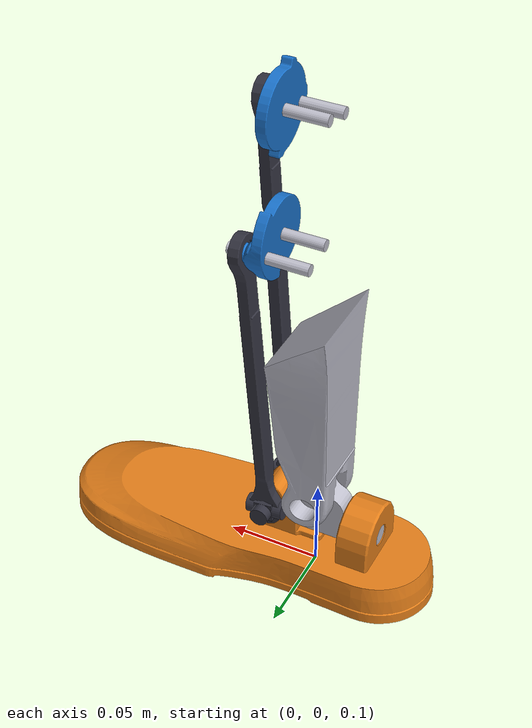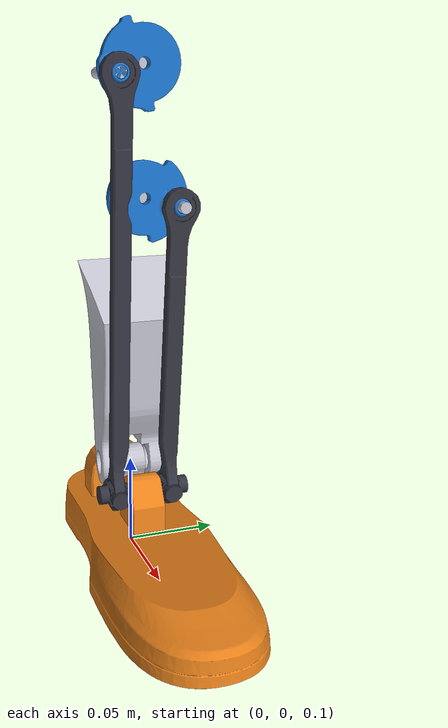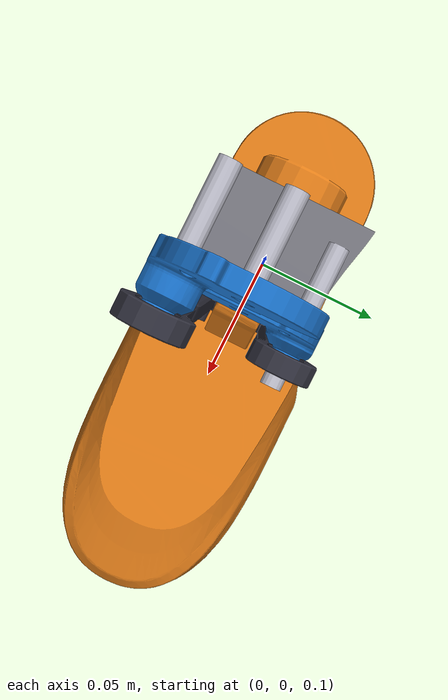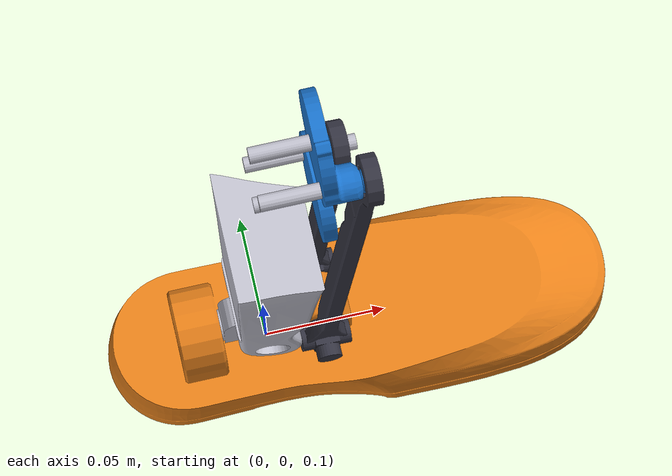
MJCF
<mujoco model="g1_ankle">
<!--  模型为个人装配，可能和官方不一致，动力学参数完全错误  。
      xml 构件参考cassie， 还可能存在bug -->

  <compiler angle="radian" meshdir="../meshes/"/>
  <option timestep='0.0005' iterations='50' solver='PGS' gravity='0 0 -9.81'/>

  <default>
    <joint limited='true'/>
    <motor ctrllimited='true'/>
    <geom contype='0' conaffinity='0' condim='1' solref='0.005 1'/>
    <equality solref='0.001 1'/>
    <default class='cassie'>
      <geom material='cassie'/>
    </default>
  </default>

  <asset>
    <texture type='skybox' builtin='gradient' width='128' height='128' rgb1='0.4 0.6 0.8' rgb2='0 0 0'/>
    <texture name='plane' type='2d' builtin='checker' rgb1='0.2 0.2 0.2' rgb2='0.3 0.3 0.3' width='512' height='512'/>
    <material name='plane' reflectance='0.0' texture='plane' texrepeat='1 1' texuniform='true'/>
    <material name='cassie'    rgba='0.9 0.5 0.1 1'/>
    <material name='collision' rgba='0.1 0.5 0.9 0'/>
    <material name='obstacle'  rgba='0.2 0.6 0.2 1'/>
    <mesh name="base_link" file="base_link.STL"/>
    <mesh name="pitch_link" file="pitch_link.STL"/>
    <mesh name="roll_link" file="roll_link.STL"/>
    <mesh name="right_u_link" file="right_u_link.STL"/>
    <mesh name="right_connect_link" file="right_connect_link.STL"/>
    <mesh name="left_u_link" file="left_u_link.STL"/>
    <mesh name="left_connect_link" file="left_connect_link.STL"/>
    <mesh name="right_motor_link" file="right_motor_link.STL"/>
    <mesh name="left_motor_link" file="left_motor_link.STL"/>

    <!-- === 通用物体颜色 === -->
    <material name="slate_grey" rgba="0.4 0.5 0.6 1.0"/>
    <material name="off_white" rgba="0.9 0.9 0.95 1.0"/>
    <material name="target_orange" rgba="0.9 0.5 0.1 1.0"/>

    <!-- === 机器人专用颜色 (分层设计) === -->
    <!-- 主体：深灰色，显得稳重 -->
    <material name="robot_base" rgba="0.2 0.2 0.25 1.0"/>
    <!-- 连杆：浅银色，模拟金属 -->
    <material name="robot_link" rgba="0.75 0.75 0.8 1.0"/>
    <!-- 关节：蓝色，突出活动部件 -->
    <material name="robot_joint" rgba="0.1 0.45 0.8 1.0"/>
    <!-- 末端执行器：红色，醒目 -->
    <material name="robot_ee" rgba="0.9 0.5 0.1 1.0"/>
  </asset>

  <worldbody>

    <light mode='trackcom' pos='0 0 5' dir='0 0 -1'/>
    <light directional='true' pos='0 0 3' dir='0 0 -1' diffuse='0.2 0.2 0.2' specular='0 0 0'/>

    <body name="base_link"  pos='0 0 0.15' childclass='cassie'>
      <inertial pos="0.0023576 1.9104e-06 0.060943" quat="0.999998 2.35279e-05 0.00217974 7.32529e-05" mass="0.11466" diaginertia="0.000109042 0.00010227 2.40534e-05"/>
      <geom type="mesh" contype="0" conaffinity="0" group="1" density="0"  mesh="base_link"  material="robot_link"/>
      <body name="pitch_link">
        <inertial pos="-0.0085578 0 -0.012176" quat="0.578533 0.406571 0.406571 0.578533" mass="0.010343" diaginertia="2.1505e-06 1.64667e-06 7.32168e-07"/>
        <joint name="pitch_joint" pos="0 0 0" axis="0 1 0"  range='-0.87267 0.5236' damping='0.' />
        <geom type="mesh" contype="0" conaffinity="0" group="1" density="0"  mesh="pitch_link"  material="robot_link"/>
        <body name="roll_link" pos="0 0 -0.017558">
          <inertial pos="0.035489 1.1701e-05 -0.021531" quat="2.50117e-05 0.721548 5.49874e-05 0.692365" mass="0.30033" diaginertia="0.000981419 0.00091712 0.000118621"/>
          <joint name="roll_joint" pos="0 0 0" axis="1 0 0"  range='-15 22.5' damping='0.'  />
          <geom type="mesh" contype="0" conaffinity="0" group="1" density="0"  mesh="roll_link"  material="robot_ee"/>
          <body name="right_u_link" pos="0.022 -0.015 0.0079999">
            <inertial pos="0 0 0" quat="0.519376 0.519376 -0.479842 0.479842" mass="0.0025708" diaginertia="1.18115e-07 7.72077e-08 7.7208e-08"/>
            <joint name="right_u_pitch_joint" pos="0 0 0" axis="0 1 0"  range='-15 22.5' damping='0.0'  />
            <geom type="mesh" contype="0" conaffinity="0" group="1" density="0"  mesh="right_u_link"  material="robot_base"/>
            <body name="right_connect_link" quat="0.999214 0.0030657 0.039534 -0.00011502">
              <inertial pos="-6.63991e-06 0.000970747 0.109981" quat="0.999999 -7.74094e-05 -7.9787e-05 -0.00117312" mass="0.0151882" diaginertia="7.07915e-05 7.07465e-05 2.17997e-07"/>
              <joint name="right_connect_joint" pos="0 0 0" axis="1 0 0" range='-15 22.5' damping='0.0'  />
              <geom type="mesh" contype="0" conaffinity="0" group="1" density="0"  mesh="right_connect_link"  material="robot_base"/>
            </body>
          </body>
          <body name="left_u_link" pos="0.022 0.015 0.0079999">
            <inertial pos="0 0 0" quat="0.520292 0.520292 -0.478849 0.478849" mass="0.0025708" diaginertia="1.18111e-07 7.72075e-08 7.7208e-08"/>
            <joint name="left_u_pitch_joint" pos="0 0 0" axis="0 1 0"  range='-15 22.5' damping='0.0' />
            <geom type="mesh" contype="0" conaffinity="0" group="1" density="0"  mesh="left_u_link"  material="robot_base"/>
            <body name="left_connect_link" quat="0.999141 0.000350633 0.0414391 -8.26912e-06">
              <inertial pos="-9.16684e-06 -6.80773e-05 0.0781984" quat="0.999991 -0.00371968 -0.000154316 0.0018207" mass="0.0111282" diaginertia="2.56262e-05 2.55936e-05 1.73691e-07"/>
              <joint name="left_connect_joint" pos="0 0 0" axis="-1 0 0" range='-15 22.5' damping='0.0'  />
              <geom type="mesh" contype="0" conaffinity="0" group="1" density="0"  mesh="left_connect_link"  material="robot_base"/>
            </body>
          </body>
        </body>
      </body>

      <body name="left_motor_link" pos="0.022 0 0.15087">
        <inertial pos="0.00362577 0.00424053 -0.00101697" quat="0.730146 0.603674 -0.203969 -0.246701" mass="0.0080401" diaginertia="1.70243e-06 1.05152e-06 7.70806e-07"/>
        <joint name="left_motor_joint" pos="0 0 0" axis="1 0 0"  range='-1.5 1.5' damping='0.0' armature='0.001'/>
        <geom type="mesh" contype="0" conaffinity="0" group="1" density="0" mesh="left_motor_link"  material="robot_joint"/>
      </body>

      <body name="right_motor_link" pos="0.022 0 0.21587">
        <inertial pos="0.00448907 -0.00493819 -0.00139596" quat="0.582114 0.700706 0.317293 0.263592" mass="0.0088576" diaginertia="1.89082e-06 1.22813e-06 8.9823e-07"/>
        <joint name="right_motor_joint" pos="0 0 0" axis="1 0 0"  range='-1.5 1.5' damping='0.0' armature='0.001'/>
        <geom type="mesh" contype="0" conaffinity="0" group="1" density="0"  mesh="right_motor_link"  material="robot_joint"/>
      </body>

    </body>
  </worldbody>

  <equality>
      <connect name="c1" body1="right_motor_link" body2="right_connect_link" anchor="0.0175 -0.016359 -0.0046245" />
      <connect name="c2" body1="left_motor_link" body2="left_connect_link" anchor="0.013 0.016529 -0.0039746" />
  </equality>

  <!-- 将 motor 改为 position -->
  <!-- kp: 比例增益 (刚度)，kv: 微分增益 (阻尼，可选) -->
  <actuator>
      <position name="left_motor_joint"  joint="left_motor_joint"  ctrlrange='-1.1 1.1' kp="100" kv='0.1'/>
      <position name="right_motor_joint" joint="right_motor_joint" ctrlrange='-1.1 1.1' kp="100" kv='0.1'/>
  </actuator>

</mujoco>
